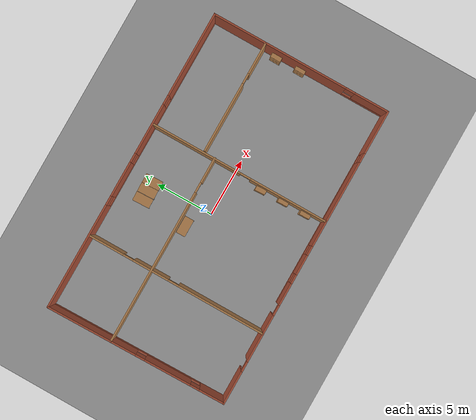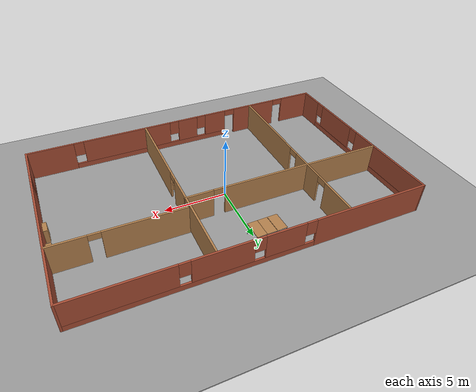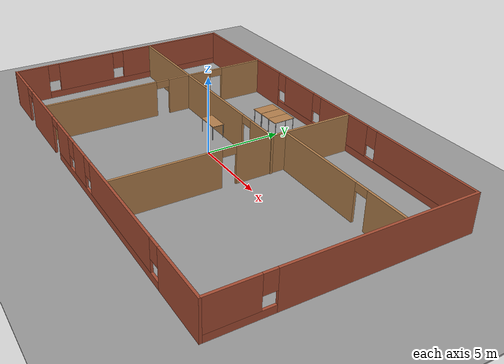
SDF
<sdf version="1.7">
 <world name="default">
  <light name="sun" type="directional">
   <pose>0 0 10 0 -0 0</pose>
   <diffuse>0.8 0.8 0.8 1</diffuse>
   <specular>0.2 0.2 0.2 1</specular>
   <attenuation>
    <range>1000</range>
    <constant>0.9</constant>
    <linear>0.01</linear>
    <quadratic>0.001</quadratic>
   </attenuation>
   <direction>-0.5 0.1 -0.9</direction>
   <spot><inner_angle>0</inner_angle><outer_angle>0</outer_angle><falloff>0</falloff></spot>
  </light>
  <model name="ground_plane">
   <static>1</static>
   <link name="link">
    <collision name="collision">
     <geometry><plane><normal>0 0 1</normal><size>100 100</size></plane></geometry>
     <surface><friction><ode><mu>100</mu><mu2>50</mu2></ode></friction></surface>
    </collision>
    <visual name="visual">
     <cast_shadows>0</cast_shadows>
     <geometry><plane><normal>0 0 1</normal><size>100 100</size></plane></geometry>
     <material>
      <script><uri>file://media/materials/scripts/gazebo.material</uri><name>Gazebo/Grey</name></script>
     </material>
    </visual>
   </link>
  </model>
  <gravity>0 0 -9.8</gravity>
  <magnetic_field>6e-06 2.3e-05 -4.2e-05</magnetic_field>
  <atmosphere type="adiabatic"/>
  <physics type="ode">
   <max_step_size>0.001</max_step_size>
   <real_time_factor>1</real_time_factor>
   <real_time_update_rate>1000</real_time_update_rate>
  </physics>
  <scene><ambient>0.4 0.4 0.4 1</ambient><background>0.7 0.7 0.7 1</background><shadows>1</shadows></scene>
  <audio><device>default</device></audio>
  <spherical_coordinates>
   <surface_model>EARTH_WGS84</surface_model>
   <latitude_deg>0</latitude_deg>
   <longitude_deg>0</longitude_deg>
   <elevation>0</elevation>
   <heading_deg>0</heading_deg>
  </spherical_coordinates>
  <model name="ROS_Project">
   <pose>0.619614 -0.310292 0 0 -0 0</pose>
   <link name="Wall_0">
    <pose>0.000596 7.8 0 0 -0 0</pose>
    <visual name="Wall_0_Visual_0">
     <pose>-8.63874 0 1.25 0 -0 0</pose>
     <geometry><box><size>9.22252 0.15 2.5</size></box></geometry>
     <material>
      <script><uri>file://media/materials/scripts/gazebo.material</uri><name>Gazebo/Bricks</name></script>
      <ambient>1 1 1 1</ambient>
     </material>
     <meta><layer>0</layer></meta>
    </visual>
    <collision name="Wall_0_Collision_0">
     <geometry><box><size>9.22252 0.15 2.5</size></box></geometry>
     <pose>-8.63874 0 1.25 0 -0 0</pose>
    </collision>
    <visual name="Wall_0_Visual_1">
     <pose>4.61126 0 0.25 0 -0 0</pose>
     <geometry><box><size>17.2775 0.15 0.5</size></box></geometry>
     <material>
      <script><uri>file://media/materials/scripts/gazebo.material</uri><name>Gazebo/Bricks</name></script>
      <ambient>1 1 1 1</ambient>
     </material>
     <meta><layer>0</layer></meta>
    </visual>
    <collision name="Wall_0_Collision_1">
     <geometry><box><size>17.2775 0.15 0.5</size></box></geometry>
     <pose>4.61126 0 0.25 0 -0 0</pose>
    </collision>
    <visual name="Wall_0_Visual_2">
     <pose>-1.70584 0 1.5 0 -0 0</pose>
     <geometry><box><size>3.04328 0.15 2</size></box></geometry>
     <material>
      <script><uri>file://media/materials/scripts/gazebo.material</uri><name>Gazebo/Bricks</name></script>
      <ambient>1 1 1 1</ambient>
     </material>
     <meta><layer>0</layer></meta>
    </visual>
    <collision name="Wall_0_Collision_2">
     <geometry><box><size>3.04328 0.15 2</size></box></geometry>
     <pose>-1.70584 0 1.5 0 -0 0</pose>
    </collision>
    <visual name="Wall_0_Visual_3">
     <pose>2.82518 0 1.5 0 -0 0</pose>
     <geometry><box><size>4.41877 0.15 2</size></box></geometry>
     <material>
      <script><uri>file://media/materials/scripts/gazebo.material</uri><name>Gazebo/Bricks</name></script>
      <ambient>1 1 1 1</ambient>
     </material>
     <meta><layer>0</layer></meta>
    </visual>
    <collision name="Wall_0_Collision_3">
     <geometry><box><size>4.41877 0.15 2</size></box></geometry>
     <pose>2.82518 0 1.5 0 -0 0</pose>
    </collision>
    <visual name="Wall_0_Visual_4">
     <pose>9.54228 0 1.5 0 -0 0</pose>
     <geometry><box><size>7.41543 0.15 2</size></box></geometry>
     <material>
      <script><uri>file://media/materials/scripts/gazebo.material</uri><name>Gazebo/Bricks</name></script>
      <ambient>1 1 1 1</ambient>
     </material>
     <meta><layer>0</layer></meta>
    </visual>
    <collision name="Wall_0_Collision_4">
     <geometry><box><size>7.41543 0.15 2</size></box></geometry>
     <pose>9.54228 0 1.5 0 -0 0</pose>
    </collision>
    <visual name="Wall_0_Visual_5">
     <pose>-3.62748 0 1.9 0 -0 0</pose>
     <geometry><box><size>0.8 0.15 1.2</size></box></geometry>
     <material>
      <script><uri>file://media/materials/scripts/gazebo.material</uri><name>Gazebo/Bricks</name></script>
      <ambient>1 1 1 1</ambient>
     </material>
     <meta><layer>0</layer></meta>
    </visual>
    <collision name="Wall_0_Collision_5">
     <geometry><box><size>0.8 0.15 1.2</size></box></geometry>
     <pose>-3.62748 0 1.9 0 -0 0</pose>
    </collision>
    <visual name="Wall_0_Visual_6">
     <pose>0.215796 0 1.9 0 -0 0</pose>
     <geometry><box><size>0.8 0.15 1.2</size></box></geometry>
     <material>
      <script><uri>file://media/materials/scripts/gazebo.material</uri><name>Gazebo/Bricks</name></script>
      <ambient>1 1 1 1</ambient>
     </material>
     <meta><layer>0</layer></meta>
    </visual>
    <collision name="Wall_0_Collision_6">
     <geometry><box><size>0.8 0.15 1.2</size></box></geometry>
     <pose>0.215796 0 1.9 0 -0 0</pose>
    </collision>
    <visual name="Wall_0_Visual_7">
     <pose>5.43457 0 1.9 0 -0 0</pose>
     <geometry><box><size>0.8 0.15 1.2</size></box></geometry>
     <material>
      <script><uri>file://media/materials/scripts/gazebo.material</uri><name>Gazebo/Bricks</name></script>
      <ambient>1 1 1 1</ambient>
     </material>
     <meta><layer>0</layer></meta>
    </visual>
    <collision name="Wall_0_Collision_7">
     <geometry><box><size>0.8 0.15 1.2</size></box></geometry>
     <pose>5.43457 0 1.9 0 -0 0</pose>
    </collision>
   </link>
   <link name="Wall_1">
    <pose>13.1756 0 0 0 -0 -1.5708</pose>
    <visual name="Wall_1_Visual_0">
     <pose>-1.92871 0 1.25 0 -0 0</pose>
     <geometry><box><size>11.8926 0.15 2.5</size></box></geometry>
     <material>
      <script><uri>file://media/materials/scripts/gazebo.material</uri><name>Gazebo/Bricks</name></script>
      <ambient>1 1 1 1</ambient>
     </material>
     <meta><layer>0</layer></meta>
    </visual>
    <collision name="Wall_1_Collision_0">
     <geometry><box><size>11.8926 0.15 2.5</size></box></geometry>
     <pose>-1.92871 0 1.25 0 -0 0</pose>
    </collision>
    <visual name="Wall_1_Visual_1">
     <pose>5.94629 0 0.25 0 -0 0</pose>
     <geometry><box><size>3.85742 0.15 0.5</size></box></geometry>
     <material>
      <script><uri>file://media/materials/scripts/gazebo.material</uri><name>Gazebo/Bricks</name></script>
      <ambient>1 1 1 1</ambient>
     </material>
     <meta><layer>0</layer></meta>
    </visual>
    <collision name="Wall_1_Collision_1">
     <geometry><box><size>3.85742 0.15 0.5</size></box></geometry>
     <pose>5.94629 0 0.25 0 -0 0</pose>
    </collision>
    <visual name="Wall_1_Visual_2">
     <pose>6.34629 0 1.5 0 -0 0</pose>
     <geometry><box><size>3.05742 0.15 2</size></box></geometry>
     <material>
      <script><uri>file://media/materials/scripts/gazebo.material</uri><name>Gazebo/Bricks</name></script>
      <ambient>1 1 1 1</ambient>
     </material>
     <meta><layer>0</layer></meta>
    </visual>
    <collision name="Wall_1_Collision_2">
     <geometry><box><size>3.05742 0.15 2</size></box></geometry>
     <pose>6.34629 0 1.5 0 -0 0</pose>
    </collision>
    <visual name="Wall_1_Visual_3">
     <pose>4.41758 0 1.9 0 -0 0</pose>
     <geometry><box><size>0.8 0.15 1.2</size></box></geometry>
     <material>
      <script><uri>file://media/materials/scripts/gazebo.material</uri><name>Gazebo/Bricks</name></script>
      <ambient>1 1 1 1</ambient>
     </material>
     <meta><layer>0</layer></meta>
    </visual>
    <collision name="Wall_1_Collision_3">
     <geometry><box><size>0.8 0.15 1.2</size></box></geometry>
     <pose>4.41758 0 1.9 0 -0 0</pose>
    </collision>
   </link>
   <link name="Wall_13">
    <pose>-4.83758 2.21713 0 0 -0 0</pose>
    <visual name="Wall_13_Visual_0">
     <pose>-1.58028 0 1.25 0 -0 0</pose>
     <geometry><box><size>13.3394 0.15 2.5</size></box></geometry>
     <material>
      <script><uri>file://media/materials/scripts/gazebo.material</uri><name>Gazebo/Wood</name></script>
      <ambient>1 1 1 1</ambient>
     </material>
     <meta><layer>0</layer></meta>
    </visual>
    <collision name="Wall_13_Collision_0">
     <geometry><box><size>13.3394 0.15 2.5</size></box></geometry>
     <pose>-1.58028 0 1.25 0 -0 0</pose>
    </collision>
    <visual name="Wall_13_Visual_1">
     <pose>7.11972 0 1.25 0 -0 0</pose>
     <geometry><box><size>2.26056 0.15 2.5</size></box></geometry>
     <material>
      <script><uri>file://media/materials/scripts/gazebo.material</uri><name>Gazebo/Wood</name></script>
      <ambient>1 1 1 1</ambient>
     </material>
     <meta><layer>0</layer></meta>
    </visual>
    <collision name="Wall_13_Collision_1">
     <geometry><box><size>2.26056 0.15 2.5</size></box></geometry>
     <pose>7.11972 0 1.25 0 -0 0</pose>
    </collision>
    <visual name="Wall_13_Visual_2">
     <pose>5.53944 0 2.25 0 -0 0</pose>
     <geometry><box><size>0.9 0.15 0.5</size></box></geometry>
     <material>
      <script><uri>file://media/materials/scripts/gazebo.material</uri><name>Gazebo/Wood</name></script>
      <ambient>1 1 1 1</ambient>
     </material>
     <meta><layer>0</layer></meta>
    </visual>
    <collision name="Wall_13_Collision_2">
     <geometry><box><size>0.9 0.15 0.5</size></box></geometry>
     <pose>5.53944 0 2.25 0 -0 0</pose>
    </collision>
   </link>
   <link name="Wall_16">
    <pose>8.29329 3.18806 0 0 -0 0</pose>
    <visual name="Wall_16_Visual_0">
     <pose>-1.82605 0 1.25 0 -0 0</pose>
     <geometry><box><size>6.09789 0.15 2.5</size></box></geometry>
     <material>
      <script><uri>file://media/materials/scripts/gazebo.material</uri><name>Gazebo/Wood</name></script>
      <ambient>1 1 1 1</ambient>
     </material>
     <meta><layer>0</layer></meta>
    </visual>
    <collision name="Wall_16_Collision_0">
     <geometry><box><size>6.09789 0.15 2.5</size></box></geometry>
     <pose>-1.82605 0 1.25 0 -0 0</pose>
    </collision>
    <visual name="Wall_16_Visual_1">
     <pose>3.49895 0 1.25 0 -0 0</pose>
     <geometry><box><size>2.75211 0.15 2.5</size></box></geometry>
     <material>
      <script><uri>file://media/materials/scripts/gazebo.material</uri><name>Gazebo/Wood</name></script>
      <ambient>1 1 1 1</ambient>
     </material>
     <meta><layer>0</layer></meta>
    </visual>
    <collision name="Wall_16_Collision_1">
     <geometry><box><size>2.75211 0.15 2.5</size></box></geometry>
     <pose>3.49895 0 1.25 0 -0 0</pose>
    </collision>
    <visual name="Wall_16_Visual_2">
     <pose>1.67289 0 2.25 0 -0 0</pose>
     <geometry><box><size>0.9 0.15 0.5</size></box></geometry>
     <material>
      <script><uri>file://media/materials/scripts/gazebo.material</uri><name>Gazebo/Wood</name></script>
      <ambient>1 1 1 1</ambient>
     </material>
     <meta><layer>0</layer></meta>
    </visual>
    <collision name="Wall_16_Collision_2">
     <geometry><box><size>0.9 0.15 0.5</size></box></geometry>
     <pose>1.67289 0 2.25 0 -0 0</pose>
    </collision>
   </link>
   <link name="Wall_2">
    <pose>0.125596 -7.8 0 0 -0 3.14159</pose>
    <visual name="Wall_2_Visual_0">
     <pose>-11.2176 0 1.25 0 -0 0</pose>
     <geometry><box><size>3.81489 0.15 2.5</size></box></geometry>
     <material>
      <script><uri>file://media/materials/scripts/gazebo.material</uri><name>Gazebo/Bricks</name></script>
      <ambient>1 1 1 1</ambient>
     </material>
     <meta><layer>0</layer></meta>
    </visual>
    <collision name="Wall_2_Collision_0">
     <geometry><box><size>3.81489 0.15 2.5</size></box></geometry>
     <pose>-11.2176 0 1.25 0 -0 0</pose>
    </collision>
    <visual name="Wall_2_Visual_1">
     <pose>7.27212 0 1.25 0 -0 0</pose>
     <geometry><box><size>4.11649 0.15 2.5</size></box></geometry>
     <material>
      <script><uri>file://media/materials/scripts/gazebo.material</uri><name>Gazebo/Bricks</name></script>
      <ambient>1 1 1 1</ambient>
     </material>
     <meta><layer>0</layer></meta>
    </visual>
    <collision name="Wall_2_Collision_1">
     <geometry><box><size>4.11649 0.15 2.5</size></box></geometry>
     <pose>7.27212 0 1.25 0 -0 0</pose>
    </collision>
    <visual name="Wall_2_Visual_2">
     <pose>11.6777 0 1.25 0 -0 0</pose>
     <geometry><box><size>2.89464 0.15 2.5</size></box></geometry>
     <material>
      <script><uri>file://media/materials/scripts/gazebo.material</uri><name>Gazebo/Bricks</name></script>
      <ambient>1 1 1 1</ambient>
     </material>
     <meta><layer>0</layer></meta>
    </visual>
    <collision name="Wall_2_Collision_2">
     <geometry><box><size>2.89464 0.15 2.5</size></box></geometry>
     <pose>11.6777 0 1.25 0 -0 0</pose>
    </collision>
    <visual name="Wall_2_Visual_3">
     <pose>-2.49812 0 0.25 0 -0 0</pose>
     <geometry><box><size>13.624 0.15 0.5</size></box></geometry>
     <material>
      <script><uri>file://media/materials/scripts/gazebo.material</uri><name>Gazebo/Bricks</name></script>
      <ambient>1 1 1 1</ambient>
     </material>
     <meta><layer>0</layer></meta>
    </visual>
    <collision name="Wall_2_Collision_3">
     <geometry><box><size>13.624 0.15 0.5</size></box></geometry>
     <pose>-2.49812 0 0.25 0 -0 0</pose>
    </collision>
    <visual name="Wall_2_Visual_4">
     <pose>-4.74319 0 1.5 0 -0 0</pose>
     <geometry><box><size>7.53385 0.15 2</size></box></geometry>
     <material>
      <script><uri>file://media/materials/scripts/gazebo.material</uri><name>Gazebo/Bricks</name></script>
      <ambient>1 1 1 1</ambient>
     </material>
     <meta><layer>0</layer></meta>
    </visual>
    <collision name="Wall_2_Collision_4">
     <geometry><box><size>7.53385 0.15 2</size></box></geometry>
     <pose>-4.74319 0 1.5 0 -0 0</pose>
    </collision>
    <visual name="Wall_2_Visual_5">
     <pose>0.698088 0 1.5 0 -0 0</pose>
     <geometry><box><size>1.7487 0.15 2</size></box></geometry>
     <material>
      <script><uri>file://media/materials/scripts/gazebo.material</uri><name>Gazebo/Bricks</name></script>
      <ambient>1 1 1 1</ambient>
     </material>
     <meta><layer>0</layer></meta>
    </visual>
    <collision name="Wall_2_Collision_5">
     <geometry><box><size>1.7487 0.15 2</size></box></geometry>
     <pose>0.698088 0 1.5 0 -0 0</pose>
    </collision>
    <visual name="Wall_2_Visual_6">
     <pose>3.34316 0 1.5 0 -0 0</pose>
     <geometry><box><size>1.94144 0.15 2</size></box></geometry>
     <material>
      <script><uri>file://media/materials/scripts/gazebo.material</uri><name>Gazebo/Bricks</name></script>
      <ambient>1 1 1 1</ambient>
     </material>
     <meta><layer>0</layer></meta>
    </visual>
    <collision name="Wall_2_Collision_6">
     <geometry><box><size>1.94144 0.15 2</size></box></geometry>
     <pose>3.34316 0 1.5 0 -0 0</pose>
    </collision>
    <visual name="Wall_2_Visual_7">
     <pose>-8.91011 0 1.9 0 -0 0</pose>
     <geometry><box><size>0.8 0.15 1.2</size></box></geometry>
     <material>
      <script><uri>file://media/materials/scripts/gazebo.material</uri><name>Gazebo/Bricks</name></script>
      <ambient>1 1 1 1</ambient>
     </material>
     <meta><layer>0</layer></meta>
    </visual>
    <collision name="Wall_2_Collision_7">
     <geometry><box><size>0.8 0.15 1.2</size></box></geometry>
     <pose>-8.91011 0 1.9 0 -0 0</pose>
    </collision>
    <visual name="Wall_2_Visual_8">
     <pose>-0.576263 0 1.9 0 -0 0</pose>
     <geometry><box><size>0.8 0.15 1.2</size></box></geometry>
     <material>
      <script><uri>file://media/materials/scripts/gazebo.material</uri><name>Gazebo/Bricks</name></script>
      <ambient>1 1 1 1</ambient>
     </material>
     <meta><layer>0</layer></meta>
    </visual>
    <collision name="Wall_2_Collision_8">
     <geometry><box><size>0.8 0.15 1.2</size></box></geometry>
     <pose>-0.576263 0 1.9 0 -0 0</pose>
    </collision>
    <visual name="Wall_2_Visual_9">
     <pose>1.97244 0 1.9 0 -0 0</pose>
     <geometry><box><size>0.8 0.15 1.2</size></box></geometry>
     <material>
      <script><uri>file://media/materials/scripts/gazebo.material</uri><name>Gazebo/Bricks</name></script>
      <ambient>1 1 1 1</ambient>
     </material>
     <meta><layer>0</layer></meta>
    </visual>
    <collision name="Wall_2_Collision_9">
     <geometry><box><size>0.8 0.15 1.2</size></box></geometry>
     <pose>1.97244 0 1.9 0 -0 0</pose>
    </collision>
    <visual name="Wall_2_Visual_10">
     <pose>9.78036 0 2.25 0 -0 0</pose>
     <geometry><box><size>0.9 0.15 0.5</size></box></geometry>
     <material>
      <script><uri>file://media/materials/scripts/gazebo.material</uri><name>Gazebo/Bricks</name></script>
      <ambient>1 1 1 1</ambient>
     </material>
     <meta><layer>0</layer></meta>
    </visual>
    <collision name="Wall_2_Collision_10">
     <geometry><box><size>0.9 0.15 0.5</size></box></geometry>
     <pose>9.78036 0 2.25 0 -0 0</pose>
    </collision>
    <visual name="Wall_2_Visual_11">
     <pose>4.76387 0 2.25 0 -0 0</pose>
     <geometry><box><size>0.9 0.15 0.5</size></box></geometry>
     <material>
      <script><uri>file://media/materials/scripts/gazebo.material</uri><name>Gazebo/Bricks</name></script>
      <ambient>1 1 1 1</ambient>
     </material>
     <meta><layer>0</layer></meta>
    </visual>
    <collision name="Wall_2_Collision_11">
     <geometry><box><size>0.9 0.15 0.5</size></box></geometry>
     <pose>4.76387 0 2.25 0 -0 0</pose>
    </collision>
   </link>
   <link name="Wall_3">
    <pose>-13.0494 0 0 0 -0 1.58682</pose>
    <visual name="Wall_3_Visual_0">
     <pose>-6.75098 0 1.25 0 -0 0</pose>
     <geometry><box><size>2.25004 0.15 2.5</size></box></geometry>
     <material>
      <script><uri>file://media/materials/scripts/gazebo.material</uri><name>Gazebo/Bricks</name></script>
      <ambient>1 1 1 1</ambient>
     </material>
     <meta><layer>0</layer></meta>
    </visual>
    <collision name="Wall_3_Collision_0">
     <geometry><box><size>2.25004 0.15 2.5</size></box></geometry>
     <pose>-6.75098 0 1.25 0 -0 0</pose>
    </collision>
    <visual name="Wall_3_Visual_1">
     <pose>1.12502 0 0.25 0 -0 0</pose>
     <geometry><box><size>13.502 0.15 0.5</size></box></geometry>
     <material>
      <script><uri>file://media/materials/scripts/gazebo.material</uri><name>Gazebo/Bricks</name></script>
      <ambient>1 1 1 1</ambient>
     </material>
     <meta><layer>0</layer></meta>
    </visual>
    <collision name="Wall_3_Collision_1">
     <geometry><box><size>13.502 0.15 0.5</size></box></geometry>
     <pose>1.12502 0 0.25 0 -0 0</pose>
    </collision>
    <visual name="Wall_3_Visual_2">
     <pose>-2.79797 0 1.5 0 -0 0</pose>
     <geometry><box><size>4.05599 0.15 2</size></box></geometry>
     <material>
      <script><uri>file://media/materials/scripts/gazebo.material</uri><name>Gazebo/Bricks</name></script>
      <ambient>1 1 1 1</ambient>
     </material>
     <meta><layer>0</layer></meta>
    </visual>
    <collision name="Wall_3_Collision_2">
     <geometry><box><size>4.05599 0.15 2</size></box></geometry>
     <pose>-2.79797 0 1.5 0 -0 0</pose>
    </collision>
    <visual name="Wall_3_Visual_3">
     <pose>3.95301 0 1.5 0 -0 0</pose>
     <geometry><box><size>7.84598 0.15 2</size></box></geometry>
     <material>
      <script><uri>file://media/materials/scripts/gazebo.material</uri><name>Gazebo/Bricks</name></script>
      <ambient>1 1 1 1</ambient>
     </material>
     <meta><layer>0</layer></meta>
    </visual>
    <collision name="Wall_3_Collision_3">
     <geometry><box><size>7.84598 0.15 2</size></box></geometry>
     <pose>3.95301 0 1.5 0 -0 0</pose>
    </collision>
    <visual name="Wall_3_Visual_4">
     <pose>-5.22597 0 1.9 0 -0 0</pose>
     <geometry><box><size>0.8 0.15 1.2</size></box></geometry>
     <material>
      <script><uri>file://media/materials/scripts/gazebo.material</uri><name>Gazebo/Bricks</name></script>
      <ambient>1 1 1 1</ambient>
     </material>
     <meta><layer>0</layer></meta>
    </visual>
    <collision name="Wall_3_Collision_4">
     <geometry><box><size>0.8 0.15 1.2</size></box></geometry>
     <pose>-5.22597 0 1.9 0 -0 0</pose>
    </collision>
    <visual name="Wall_3_Visual_5">
     <pose>-0.369976 0 1.9 0 -0 0</pose>
     <geometry><box><size>0.8 0.15 1.2</size></box></geometry>
     <material>
      <script><uri>file://media/materials/scripts/gazebo.material</uri><name>Gazebo/Bricks</name></script>
      <ambient>1 1 1 1</ambient>
     </material>
     <meta><layer>0</layer></meta>
    </visual>
    <collision name="Wall_3_Collision_5">
     <geometry><box><size>0.8 0.15 1.2</size></box></geometry>
     <pose>-0.369976 0 1.9 0 -0 0</pose>
    </collision>
   </link>
   <link name="Wall_5">
    <pose>-6.74197 -0.036822 0 0 -0 -1.5708</pose>
    <visual name="Wall_5_Visual_0">
     <pose>-6.25859 0 1.25 0 -0 0</pose>
     <geometry><box><size>2.98281 0.15 2.5</size></box></geometry>
     <material>
      <script><uri>file://media/materials/scripts/gazebo.material</uri><name>Gazebo/Wood</name></script>
      <ambient>1 1 1 1</ambient>
     </material>
     <meta><layer>0</layer></meta>
    </visual>
    <collision name="Wall_5_Collision_0">
     <geometry><box><size>2.98281 0.15 2.5</size></box></geometry>
     <pose>-6.25859 0 1.25 0 -0 0</pose>
    </collision>
    <visual name="Wall_5_Visual_1">
     <pose>-2.29441 0 1.25 0 -0 0</pose>
     <geometry><box><size>3.14556 0.15 2.5</size></box></geometry>
     <material>
      <script><uri>file://media/materials/scripts/gazebo.material</uri><name>Gazebo/Wood</name></script>
      <ambient>1 1 1 1</ambient>
     </material>
     <meta><layer>0</layer></meta>
    </visual>
    <collision name="Wall_5_Collision_1">
     <geometry><box><size>3.14556 0.15 2.5</size></box></geometry>
     <pose>-2.29441 0 1.25 0 -0 0</pose>
    </collision>
    <visual name="Wall_5_Visual_2">
     <pose>3.96419 0 1.25 0 -0 0</pose>
     <geometry><box><size>7.57163 0.15 2.5</size></box></geometry>
     <material>
      <script><uri>file://media/materials/scripts/gazebo.material</uri><name>Gazebo/Wood</name></script>
      <ambient>1 1 1 1</ambient>
     </material>
     <meta><layer>0</layer></meta>
    </visual>
    <collision name="Wall_5_Collision_2">
     <geometry><box><size>7.57163 0.15 2.5</size></box></geometry>
     <pose>3.96419 0 1.25 0 -0 0</pose>
    </collision>
    <visual name="Wall_5_Visual_3">
     <pose>-4.31719 0 2.25 0 -0 0</pose>
     <geometry><box><size>0.9 0.15 0.5</size></box></geometry>
     <material>
      <script><uri>file://media/materials/scripts/gazebo.material</uri><name>Gazebo/Wood</name></script>
      <ambient>1 1 1 1</ambient>
     </material>
     <meta><layer>0</layer></meta>
    </visual>
    <collision name="Wall_5_Collision_3">
     <geometry><box><size>0.9 0.15 0.5</size></box></geometry>
     <pose>-4.31719 0 2.25 0 -0 0</pose>
    </collision>
    <visual name="Wall_5_Visual_4">
     <pose>-0.271629 0 2.25 0 -0 0</pose>
     <geometry><box><size>0.9 0.15 0.5</size></box></geometry>
     <material>
      <script><uri>file://media/materials/scripts/gazebo.material</uri><name>Gazebo/Wood</name></script>
      <ambient>1 1 1 1</ambient>
     </material>
     <meta><layer>0</layer></meta>
    </visual>
    <collision name="Wall_5_Collision_4">
     <geometry><box><size>0.9 0.15 0.5</size></box></geometry>
     <pose>-0.271629 0 2.25 0 -0 0</pose>
    </collision>
   </link>
   <link name="Wall_9">
    <pose>3.29102 -0.036822 0 0 -0 -1.5708</pose>
    <visual name="Wall_9_Visual_0">
     <pose>-3.83126 0 1.25 0 -0 0</pose>
     <geometry><box><size>7.83748 0.15 2.5</size></box></geometry>
     <material>
      <script><uri>file://media/materials/scripts/gazebo.material</uri><name>Gazebo/Wood</name></script>
      <ambient>1 1 1 1</ambient>
     </material>
     <meta><layer>0</layer></meta>
    </visual>
    <collision name="Wall_9_Collision_0">
     <geometry><box><size>7.83748 0.15 2.5</size></box></geometry>
     <pose>-3.83126 0 1.25 0 -0 0</pose>
    </collision>
    <visual name="Wall_9_Visual_1">
     <pose>4.36874 0 1.25 0 -0 0</pose>
     <geometry><box><size>6.76252 0.15 2.5</size></box></geometry>
     <material>
      <script><uri>file://media/materials/scripts/gazebo.material</uri><name>Gazebo/Wood</name></script>
      <ambient>1 1 1 1</ambient>
     </material>
     <meta><layer>0</layer></meta>
    </visual>
    <collision name="Wall_9_Collision_1">
     <geometry><box><size>6.76252 0.15 2.5</size></box></geometry>
     <pose>4.36874 0 1.25 0 -0 0</pose>
    </collision>
    <visual name="Wall_9_Visual_2">
     <pose>0.537482 0 2.25 0 -0 0</pose>
     <geometry><box><size>0.9 0.15 0.5</size></box></geometry>
     <material>
      <script><uri>file://media/materials/scripts/gazebo.material</uri><name>Gazebo/Wood</name></script>
      <ambient>1 1 1 1</ambient>
     </material>
     <meta><layer>0</layer></meta>
    </visual>
    <collision name="Wall_9_Collision_2">
     <geometry><box><size>0.9 0.15 0.5</size></box></geometry>
     <pose>0.537482 0 2.25 0 -0 0</pose>
    </collision>
   </link>
   <static>1</static>
  </model>
  <model name="ground_plane_0">
   <static>1</static>
   <link name="link">
    <collision name="collision">
     <geometry><plane><normal>0 0 1</normal><size>100 100</size></plane></geometry>
     <surface><friction><ode><mu>100</mu><mu2>50</mu2></ode></friction></surface>
    </collision>
    <visual name="visual">
     <cast_shadows>0</cast_shadows>
     <geometry><plane><normal>0 0 1</normal><size>100 100</size></plane></geometry>
     <material>
      <script><uri>file://media/materials/scripts/gazebo.material</uri><name>Gazebo/Grey</name></script>
     </material>
    </visual>
   </link>
   <pose>-0.447926 9.40666 0 0 -0 0</pose>
  </model>
  <model name="bookshelf">
   <static>1</static>
   <link name="link">
    <inertial><mass>1</mass></inertial>
    <collision name="back">
     <pose>0 0.005 0.6 0 -0 0</pose>
     <geometry><box><size>0.9 0.01 1.2</size></box></geometry>
    </collision>
    <visual name="visual1">
     <pose>0 0.005 0.6 0 -0 0</pose>
     <geometry><box><size>0.9 0.01 1.2</size></box></geometry>
     <material>
      <script><uri>file://media/materials/scripts/gazebo.material</uri><name>Gazebo/Wood</name></script>
     </material>
    </visual>
    <collision name="left_side">
     <pose>0.45 -0.195 0.6 0 -0 0</pose>
     <geometry><box><size>0.02 0.4 1.2</size></box></geometry>
    </collision>
    <visual name="visual2">
     <pose>0.45 -0.195 0.6 0 -0 0</pose>
     <geometry><box><size>0.02 0.4 1.2</size></box></geometry>
     <material>
      <script><uri>file://media/materials/scripts/gazebo.material</uri><name>Gazebo/Wood</name></script>
     </material>
    </visual>
    <collision name="right_side">
     <pose>-0.45 -0.195 0.6 0 -0 0</pose>
     <geometry><box><size>0.02 0.4 1.2</size></box></geometry>
    </collision>
    <visual name="visual3">
     <pose>-0.45 -0.195 0.6 0 -0 0</pose>
     <geometry><box><size>0.02 0.4 1.2</size></box></geometry>
     <material>
      <script><uri>file://media/materials/scripts/gazebo.material</uri><name>Gazebo/Wood</name></script>
     </material>
    </visual>
    <collision name="bottom">
     <pose>0 -0.195 0.03 0 -0 0</pose>
     <geometry><box><size>0.88 0.4 0.06</size></box></geometry>
    </collision>
    <visual name="visual4">
     <pose>0 -0.195 0.03 0 -0 0</pose>
     <geometry><box><size>0.88 0.4 0.06</size></box></geometry>
     <material>
      <script><uri>file://media/materials/scripts/gazebo.material</uri><name>Gazebo/Wood</name></script>
     </material>
    </visual>
    <collision name="top">
     <pose>0 -0.195 1.19 0 -0 0</pose>
     <geometry><box><size>0.88 0.4 0.02</size></box></geometry>
    </collision>
    <visual name="visual5">
     <pose>0 -0.195 1.19 0 -0 0</pose>
     <geometry><box><size>0.88 0.4 0.02</size></box></geometry>
     <material>
      <script><uri>file://media/materials/scripts/gazebo.material</uri><name>Gazebo/Wood</name></script>
     </material>
    </visual>
    <collision name="low_shelf">
     <pose>0 -0.195 0.43 0 -0 0</pose>
     <geometry><box><size>0.88 0.4 0.02</size></box></geometry>
    </collision>
    <visual name="visual6">
     <pose>0 -0.195 0.43 0 -0 0</pose>
     <geometry><box><size>0.88 0.4 0.02</size></box></geometry>
     <material>
      <script><uri>file://media/materials/scripts/gazebo.material</uri><name>Gazebo/Wood</name></script>
     </material>
    </visual>
    <collision name="high_shelf">
     <pose>0 -0.195 0.8 0 -0 0</pose>
     <geometry><box><size>0.88 0.4 0.02</size></box></geometry>
    </collision>
    <visual name="visual7">
     <pose>0 -0.195 0.8 0 -0 0</pose>
     <geometry><box><size>0.88 0.4 0.02</size></box></geometry>
     <material>
      <script><uri>file://media/materials/scripts/gazebo.material</uri><name>Gazebo/Wood</name></script>
     </material>
    </visual>
   </link>
   <pose>3.83157 -2.48532 -0 0 0 -1.53649</pose>
  </model>
  <model name="bookshelf_clone">
   <static>1</static>
   <link name="link">
    <inertial><mass>1</mass></inertial>
    <collision name="back">
     <pose>0 0.005 0.6 0 -0 0</pose>
     <geometry><box><size>0.9 0.01 1.2</size></box></geometry>
    </collision>
    <visual name="visual1">
     <pose>0 0.005 0.6 0 -0 0</pose>
     <geometry><box><size>0.9 0.01 1.2</size></box></geometry>
     <material>
      <script><uri>file://media/materials/scripts/gazebo.material</uri><name>Gazebo/Wood</name></script>
     </material>
    </visual>
    <collision name="left_side">
     <pose>0.45 -0.195 0.6 0 -0 0</pose>
     <geometry><box><size>0.02 0.4 1.2</size></box></geometry>
    </collision>
    <visual name="visual2">
     <pose>0.45 -0.195 0.6 0 -0 0</pose>
     <geometry><box><size>0.02 0.4 1.2</size></box></geometry>
     <material>
      <script><uri>file://media/materials/scripts/gazebo.material</uri><name>Gazebo/Wood</name></script>
     </material>
    </visual>
    <collision name="right_side">
     <pose>-0.45 -0.195 0.6 0 -0 0</pose>
     <geometry><box><size>0.02 0.4 1.2</size></box></geometry>
    </collision>
    <visual name="visual3">
     <pose>-0.45 -0.195 0.6 0 -0 0</pose>
     <geometry><box><size>0.02 0.4 1.2</size></box></geometry>
     <material>
      <script><uri>file://media/materials/scripts/gazebo.material</uri><name>Gazebo/Wood</name></script>
     </material>
    </visual>
    <collision name="bottom">
     <pose>0 -0.195 0.03 0 -0 0</pose>
     <geometry><box><size>0.88 0.4 0.06</size></box></geometry>
    </collision>
    <visual name="visual4">
     <pose>0 -0.195 0.03 0 -0 0</pose>
     <geometry><box><size>0.88 0.4 0.06</size></box></geometry>
     <material>
      <script><uri>file://media/materials/scripts/gazebo.material</uri><name>Gazebo/Wood</name></script>
     </material>
    </visual>
    <collision name="top">
     <pose>0 -0.195 1.19 0 -0 0</pose>
     <geometry><box><size>0.88 0.4 0.02</size></box></geometry>
    </collision>
    <visual name="visual5">
     <pose>0 -0.195 1.19 0 -0 0</pose>
     <geometry><box><size>0.88 0.4 0.02</size></box></geometry>
     <material>
      <script><uri>file://media/materials/scripts/gazebo.material</uri><name>Gazebo/Wood</name></script>
     </material>
    </visual>
    <collision name="low_shelf">
     <pose>0 -0.195 0.43 0 -0 0</pose>
     <geometry><box><size>0.88 0.4 0.02</size></box></geometry>
    </collision>
    <visual name="visual6">
     <pose>0 -0.195 0.43 0 -0 0</pose>
     <geometry><box><size>0.88 0.4 0.02</size></box></geometry>
     <material>
      <script><uri>file://media/materials/scripts/gazebo.material</uri><name>Gazebo/Wood</name></script>
     </material>
    </visual>
    <collision name="high_shelf">
     <pose>0 -0.195 0.8 0 -0 0</pose>
     <geometry><box><size>0.88 0.4 0.02</size></box></geometry>
    </collision>
    <visual name="visual7">
     <pose>0 -0.195 0.8 0 -0 0</pose>
     <geometry><box><size>0.88 0.4 0.02</size></box></geometry>
     <material>
      <script><uri>file://media/materials/scripts/gazebo.material</uri><name>Gazebo/Wood</name></script>
     </material>
    </visual>
   </link>
   <pose>3.89441 -4.51591 0 0 0 -1.53649</pose>
  </model>
  <model name="bookshelf_clone_0">
   <static>1</static>
   <link name="link">
    <inertial><mass>1</mass></inertial>
    <collision name="back">
     <pose>0 0.005 0.6 0 -0 0</pose>
     <geometry><box><size>0.9 0.01 1.2</size></box></geometry>
    </collision>
    <visual name="visual1">
     <pose>0 0.005 0.6 0 -0 0</pose>
     <geometry><box><size>0.9 0.01 1.2</size></box></geometry>
     <material>
      <script><uri>file://media/materials/scripts/gazebo.material</uri><name>Gazebo/Wood</name></script>
     </material>
    </visual>
    <collision name="left_side">
     <pose>0.45 -0.195 0.6 0 -0 0</pose>
     <geometry><box><size>0.02 0.4 1.2</size></box></geometry>
    </collision>
    <visual name="visual2">
     <pose>0.45 -0.195 0.6 0 -0 0</pose>
     <geometry><box><size>0.02 0.4 1.2</size></box></geometry>
     <material>
      <script><uri>file://media/materials/scripts/gazebo.material</uri><name>Gazebo/Wood</name></script>
     </material>
    </visual>
    <collision name="right_side">
     <pose>-0.45 -0.195 0.6 0 -0 0</pose>
     <geometry><box><size>0.02 0.4 1.2</size></box></geometry>
    </collision>
    <visual name="visual3">
     <pose>-0.45 -0.195 0.6 0 -0 0</pose>
     <geometry><box><size>0.02 0.4 1.2</size></box></geometry>
     <material>
      <script><uri>file://media/materials/scripts/gazebo.material</uri><name>Gazebo/Wood</name></script>
     </material>
    </visual>
    <collision name="bottom">
     <pose>0 -0.195 0.03 0 -0 0</pose>
     <geometry><box><size>0.88 0.4 0.06</size></box></geometry>
    </collision>
    <visual name="visual4">
     <pose>0 -0.195 0.03 0 -0 0</pose>
     <geometry><box><size>0.88 0.4 0.06</size></box></geometry>
     <material>
      <script><uri>file://media/materials/scripts/gazebo.material</uri><name>Gazebo/Wood</name></script>
     </material>
    </visual>
    <collision name="top">
     <pose>0 -0.195 1.19 0 -0 0</pose>
     <geometry><box><size>0.88 0.4 0.02</size></box></geometry>
    </collision>
    <visual name="visual5">
     <pose>0 -0.195 1.19 0 -0 0</pose>
     <geometry><box><size>0.88 0.4 0.02</size></box></geometry>
     <material>
      <script><uri>file://media/materials/scripts/gazebo.material</uri><name>Gazebo/Wood</name></script>
     </material>
    </visual>
    <collision name="low_shelf">
     <pose>0 -0.195 0.43 0 -0 0</pose>
     <geometry><box><size>0.88 0.4 0.02</size></box></geometry>
    </collision>
    <visual name="visual6">
     <pose>0 -0.195 0.43 0 -0 0</pose>
     <geometry><box><size>0.88 0.4 0.02</size></box></geometry>
     <material>
      <script><uri>file://media/materials/scripts/gazebo.material</uri><name>Gazebo/Wood</name></script>
     </material>
    </visual>
    <collision name="high_shelf">
     <pose>0 -0.195 0.8 0 -0 0</pose>
     <geometry><box><size>0.88 0.4 0.02</size></box></geometry>
    </collision>
    <visual name="visual7">
     <pose>0 -0.195 0.8 0 -0 0</pose>
     <geometry><box><size>0.88 0.4 0.02</size></box></geometry>
     <material>
      <script><uri>file://media/materials/scripts/gazebo.material</uri><name>Gazebo/Wood</name></script>
     </material>
    </visual>
   </link>
   <pose>3.8885 -6.52858 0 0 0 -1.53649</pose>
  </model>
  <model name="table">
   <static>1</static>
   <link name="link">
    <collision name="surface">
     <pose>0 0 1 0 -0 0</pose>
     <geometry><box><size>1.5 0.8 0.03</size></box></geometry>
     <surface><friction><ode><mu>0.6</mu><mu2>0.6</mu2></ode></friction></surface>
    </collision>
    <visual name="visual1">
     <pose>0 0 1 0 -0 0</pose>
     <geometry><box><size>1.5 0.8 0.03</size></box></geometry>
     <material>
      <script><uri>file://media/materials/scripts/gazebo.material</uri><name>Gazebo/Wood</name></script>
     </material>
    </visual>
    <collision name="front_left_leg">
     <pose>0.68 0.38 0.5 0 -0 0</pose>
     <geometry><cylinder><radius>0.02</radius><length>1</length></cylinder></geometry>
    </collision>
    <visual name="front_left_leg">
     <pose>0.68 0.38 0.5 0 -0 0</pose>
     <geometry><cylinder><radius>0.02</radius><length>1</length></cylinder></geometry>
     <material>
      <script><uri>file://media/materials/scripts/gazebo.material</uri><name>Gazebo/Grey</name></script>
     </material>
    </visual>
    <collision name="front_right_leg">
     <pose>0.68 -0.38 0.5 0 -0 0</pose>
     <geometry><cylinder><radius>0.02</radius><length>1</length></cylinder></geometry>
    </collision>
    <visual name="front_right_leg">
     <pose>0.68 -0.38 0.5 0 -0 0</pose>
     <geometry><cylinder><radius>0.02</radius><length>1</length></cylinder></geometry>
     <material>
      <script><uri>file://media/materials/scripts/gazebo.material</uri><name>Gazebo/Grey</name></script>
     </material>
    </visual>
    <collision name="back_right_leg">
     <pose>-0.68 -0.38 0.5 0 -0 0</pose>
     <geometry><cylinder><radius>0.02</radius><length>1</length></cylinder></geometry>
    </collision>
    <visual name="back_right_leg">
     <pose>-0.68 -0.38 0.5 0 -0 0</pose>
     <geometry><cylinder><radius>0.02</radius><length>1</length></cylinder></geometry>
     <material>
      <script><uri>file://media/materials/scripts/gazebo.material</uri><name>Gazebo/Grey</name></script>
     </material>
    </visual>
    <collision name="back_left_leg">
     <pose>-0.68 0.38 0.5 0 -0 0</pose>
     <geometry><cylinder><radius>0.02</radius><length>1</length></cylinder></geometry>
    </collision>
    <visual name="back_left_leg">
     <pose>-0.68 0.38 0.5 0 -0 0</pose>
     <geometry><cylinder><radius>0.02</radius><length>1</length></cylinder></geometry>
     <material>
      <script><uri>file://media/materials/scripts/gazebo.material</uri><name>Gazebo/Grey</name></script>
     </material>
    </visual>
   </link>
   <pose>-1.6744 5.33872 0 0 -0 1.59967</pose>
  </model>
  <model name="table_clone">
   <static>1</static>
   <link name="link">
    <collision name="surface">
     <pose>0 0 1 0 -0 0</pose>
     <geometry><box><size>1.5 0.8 0.03</size></box></geometry>
     <surface><friction><ode><mu>0.6</mu><mu2>0.6</mu2></ode></friction></surface>
    </collision>
    <visual name="visual1">
     <pose>0 0 1 0 -0 0</pose>
     <geometry><box><size>1.5 0.8 0.03</size></box></geometry>
     <material>
      <script><uri>file://media/materials/scripts/gazebo.material</uri><name>Gazebo/Wood</name></script>
     </material>
    </visual>
    <collision name="front_left_leg">
     <pose>0.68 0.38 0.5 0 -0 0</pose>
     <geometry><cylinder><radius>0.02</radius><length>1</length></cylinder></geometry>
    </collision>
    <visual name="front_left_leg">
     <pose>0.68 0.38 0.5 0 -0 0</pose>
     <geometry><cylinder><radius>0.02</radius><length>1</length></cylinder></geometry>
     <material>
      <script><uri>file://media/materials/scripts/gazebo.material</uri><name>Gazebo/Grey</name></script>
     </material>
    </visual>
    <collision name="front_right_leg">
     <pose>0.68 -0.38 0.5 0 -0 0</pose>
     <geometry><cylinder><radius>0.02</radius><length>1</length></cylinder></geometry>
    </collision>
    <visual name="front_right_leg">
     <pose>0.68 -0.38 0.5 0 -0 0</pose>
     <geometry><cylinder><radius>0.02</radius><length>1</length></cylinder></geometry>
     <material>
      <script><uri>file://media/materials/scripts/gazebo.material</uri><name>Gazebo/Grey</name></script>
     </material>
    </visual>
    <collision name="back_right_leg">
     <pose>-0.68 -0.38 0.5 0 -0 0</pose>
     <geometry><cylinder><radius>0.02</radius><length>1</length></cylinder></geometry>
    </collision>
    <visual name="back_right_leg">
     <pose>-0.68 -0.38 0.5 0 -0 0</pose>
     <geometry><cylinder><radius>0.02</radius><length>1</length></cylinder></geometry>
     <material>
      <script><uri>file://media/materials/scripts/gazebo.material</uri><name>Gazebo/Grey</name></script>
     </material>
    </visual>
    <collision name="back_left_leg">
     <pose>-0.68 0.38 0.5 0 -0 0</pose>
     <geometry><cylinder><radius>0.02</radius><length>1</length></cylinder></geometry>
    </collision>
    <visual name="back_left_leg">
     <pose>-0.68 0.38 0.5 0 -0 0</pose>
     <geometry><cylinder><radius>0.02</radius><length>1</length></cylinder></geometry>
     <material>
      <script><uri>file://media/materials/scripts/gazebo.material</uri><name>Gazebo/Grey</name></script>
     </material>
    </visual>
   </link>
   <pose>-0.853859 5.3572 0 0 -0 1.59967</pose>
  </model>
  <model name="table_clone_0">
   <static>1</static>
   <link name="link">
    <collision name="surface">
     <pose>0 0 1 0 -0 0</pose>
     <geometry><box><size>1.5 0.8 0.03</size></box></geometry>
     <surface><friction><ode><mu>0.6</mu><mu2>0.6</mu2></ode></friction></surface>
    </collision>
    <visual name="visual1">
     <pose>0 0 1 0 -0 0</pose>
     <geometry><box><size>1.5 0.8 0.03</size></box></geometry>
     <material>
      <script><uri>file://media/materials/scripts/gazebo.material</uri><name>Gazebo/Wood</name></script>
     </material>
    </visual>
    <collision name="front_left_leg">
     <pose>0.68 0.38 0.5 0 -0 0</pose>
     <geometry><cylinder><radius>0.02</radius><length>1</length></cylinder></geometry>
    </collision>
    <visual name="front_left_leg">
     <pose>0.68 0.38 0.5 0 -0 0</pose>
     <geometry><cylinder><radius>0.02</radius><length>1</length></cylinder></geometry>
     <material>
      <script><uri>file://media/materials/scripts/gazebo.material</uri><name>Gazebo/Grey</name></script>
     </material>
    </visual>
    <collision name="front_right_leg">
     <pose>0.68 -0.38 0.5 0 -0 0</pose>
     <geometry><cylinder><radius>0.02</radius><length>1</length></cylinder></geometry>
    </collision>
    <visual name="front_right_leg">
     <pose>0.68 -0.38 0.5 0 -0 0</pose>
     <geometry><cylinder><radius>0.02</radius><length>1</length></cylinder></geometry>
     <material>
      <script><uri>file://media/materials/scripts/gazebo.material</uri><name>Gazebo/Grey</name></script>
     </material>
    </visual>
    <collision name="back_right_leg">
     <pose>-0.68 -0.38 0.5 0 -0 0</pose>
     <geometry><cylinder><radius>0.02</radius><length>1</length></cylinder></geometry>
    </collision>
    <visual name="back_right_leg">
     <pose>-0.68 -0.38 0.5 0 -0 0</pose>
     <geometry><cylinder><radius>0.02</radius><length>1</length></cylinder></geometry>
     <material>
      <script><uri>file://media/materials/scripts/gazebo.material</uri><name>Gazebo/Grey</name></script>
     </material>
    </visual>
    <collision name="back_left_leg">
     <pose>-0.68 0.38 0.5 0 -0 0</pose>
     <geometry><cylinder><radius>0.02</radius><length>1</length></cylinder></geometry>
    </collision>
    <visual name="back_left_leg">
     <pose>-0.68 0.38 0.5 0 -0 0</pose>
     <geometry><cylinder><radius>0.02</radius><length>1</length></cylinder></geometry>
     <material>
      <script><uri>file://media/materials/scripts/gazebo.material</uri><name>Gazebo/Grey</name></script>
     </material>
    </visual>
   </link>
   <pose>-0.065901 5.37037 0 0 -0 1.59967</pose>
  </model>
  <model name="bookshelf_0">
   <static>1</static>
   <link name="link">
    <inertial><mass>1</mass></inertial>
    <collision name="back">
     <pose>0 0.005 0.6 0 -0 0</pose>
     <geometry><box><size>0.9 0.01 1.2</size></box></geometry>
    </collision>
    <visual name="visual1">
     <pose>0 0.005 0.6 0 -0 0</pose>
     <geometry><box><size>0.9 0.01 1.2</size></box></geometry>
     <material>
      <script><uri>file://media/materials/scripts/gazebo.material</uri><name>Gazebo/Wood</name></script>
     </material>
    </visual>
    <collision name="left_side">
     <pose>0.45 -0.195 0.6 0 -0 0</pose>
     <geometry><box><size>0.02 0.4 1.2</size></box></geometry>
    </collision>
    <visual name="visual2">
     <pose>0.45 -0.195 0.6 0 -0 0</pose>
     <geometry><box><size>0.02 0.4 1.2</size></box></geometry>
     <material>
      <script><uri>file://media/materials/scripts/gazebo.material</uri><name>Gazebo/Wood</name></script>
     </material>
    </visual>
    <collision name="right_side">
     <pose>-0.45 -0.195 0.6 0 -0 0</pose>
     <geometry><box><size>0.02 0.4 1.2</size></box></geometry>
    </collision>
    <visual name="visual3">
     <pose>-0.45 -0.195 0.6 0 -0 0</pose>
     <geometry><box><size>0.02 0.4 1.2</size></box></geometry>
     <material>
      <script><uri>file://media/materials/scripts/gazebo.material</uri><name>Gazebo/Wood</name></script>
     </material>
    </visual>
    <collision name="bottom">
     <pose>0 -0.195 0.03 0 -0 0</pose>
     <geometry><box><size>0.88 0.4 0.06</size></box></geometry>
    </collision>
    <visual name="visual4">
     <pose>0 -0.195 0.03 0 -0 0</pose>
     <geometry><box><size>0.88 0.4 0.06</size></box></geometry>
     <material>
      <script><uri>file://media/materials/scripts/gazebo.material</uri><name>Gazebo/Wood</name></script>
     </material>
    </visual>
    <collision name="top">
     <pose>0 -0.195 1.19 0 -0 0</pose>
     <geometry><box><size>0.88 0.4 0.02</size></box></geometry>
    </collision>
    <visual name="visual5">
     <pose>0 -0.195 1.19 0 -0 0</pose>
     <geometry><box><size>0.88 0.4 0.02</size></box></geometry>
     <material>
      <script><uri>file://media/materials/scripts/gazebo.material</uri><name>Gazebo/Wood</name></script>
     </material>
    </visual>
    <collision name="low_shelf">
     <pose>0 -0.195 0.43 0 -0 0</pose>
     <geometry><box><size>0.88 0.4 0.02</size></box></geometry>
    </collision>
    <visual name="visual6">
     <pose>0 -0.195 0.43 0 -0 0</pose>
     <geometry><box><size>0.88 0.4 0.02</size></box></geometry>
     <material>
      <script><uri>file://media/materials/scripts/gazebo.material</uri><name>Gazebo/Wood</name></script>
     </material>
    </visual>
    <collision name="high_shelf">
     <pose>0 -0.195 0.8 0 -0 0</pose>
     <geometry><box><size>0.88 0.4 0.02</size></box></geometry>
    </collision>
    <visual name="visual7">
     <pose>0 -0.195 0.8 0 -0 0</pose>
     <geometry><box><size>0.88 0.4 0.02</size></box></geometry>
     <material>
      <script><uri>file://media/materials/scripts/gazebo.material</uri><name>Gazebo/Wood</name></script>
     </material>
    </visual>
   </link>
   <pose>13.7188 1.66398 0 0 0 -1.58365</pose>
  </model>
  <model name="bookshelf_0_clone">
   <static>1</static>
   <link name="link">
    <inertial><mass>1</mass></inertial>
    <collision name="back">
     <pose>0 0.005 0.6 0 -0 0</pose>
     <geometry><box><size>0.9 0.01 1.2</size></box></geometry>
    </collision>
    <visual name="visual1">
     <pose>0 0.005 0.6 0 -0 0</pose>
     <geometry><box><size>0.9 0.01 1.2</size></box></geometry>
     <material>
      <script><uri>file://media/materials/scripts/gazebo.material</uri><name>Gazebo/Wood</name></script>
     </material>
    </visual>
    <collision name="left_side">
     <pose>0.45 -0.195 0.6 0 -0 0</pose>
     <geometry><box><size>0.02 0.4 1.2</size></box></geometry>
    </collision>
    <visual name="visual2">
     <pose>0.45 -0.195 0.6 0 -0 0</pose>
     <geometry><box><size>0.02 0.4 1.2</size></box></geometry>
     <material>
      <script><uri>file://media/materials/scripts/gazebo.material</uri><name>Gazebo/Wood</name></script>
     </material>
    </visual>
    <collision name="right_side">
     <pose>-0.45 -0.195 0.6 0 -0 0</pose>
     <geometry><box><size>0.02 0.4 1.2</size></box></geometry>
    </collision>
    <visual name="visual3">
     <pose>-0.45 -0.195 0.6 0 -0 0</pose>
     <geometry><box><size>0.02 0.4 1.2</size></box></geometry>
     <material>
      <script><uri>file://media/materials/scripts/gazebo.material</uri><name>Gazebo/Wood</name></script>
     </material>
    </visual>
    <collision name="bottom">
     <pose>0 -0.195 0.03 0 -0 0</pose>
     <geometry><box><size>0.88 0.4 0.06</size></box></geometry>
    </collision>
    <visual name="visual4">
     <pose>0 -0.195 0.03 0 -0 0</pose>
     <geometry><box><size>0.88 0.4 0.06</size></box></geometry>
     <material>
      <script><uri>file://media/materials/scripts/gazebo.material</uri><name>Gazebo/Wood</name></script>
     </material>
    </visual>
    <collision name="top">
     <pose>0 -0.195 1.19 0 -0 0</pose>
     <geometry><box><size>0.88 0.4 0.02</size></box></geometry>
    </collision>
    <visual name="visual5">
     <pose>0 -0.195 1.19 0 -0 0</pose>
     <geometry><box><size>0.88 0.4 0.02</size></box></geometry>
     <material>
      <script><uri>file://media/materials/scripts/gazebo.material</uri><name>Gazebo/Wood</name></script>
     </material>
    </visual>
    <collision name="low_shelf">
     <pose>0 -0.195 0.43 0 -0 0</pose>
     <geometry><box><size>0.88 0.4 0.02</size></box></geometry>
    </collision>
    <visual name="visual6">
     <pose>0 -0.195 0.43 0 -0 0</pose>
     <geometry><box><size>0.88 0.4 0.02</size></box></geometry>
     <material>
      <script><uri>file://media/materials/scripts/gazebo.material</uri><name>Gazebo/Wood</name></script>
     </material>
    </visual>
    <collision name="high_shelf">
     <pose>0 -0.195 0.8 0 -0 0</pose>
     <geometry><box><size>0.88 0.4 0.02</size></box></geometry>
    </collision>
    <visual name="visual7">
     <pose>0 -0.195 0.8 0 -0 0</pose>
     <geometry><box><size>0.88 0.4 0.02</size></box></geometry>
     <material>
      <script><uri>file://media/materials/scripts/gazebo.material</uri><name>Gazebo/Wood</name></script>
     </material>
    </visual>
   </link>
   <pose>13.7912 -0.506681 0 0 0 -1.58365</pose>
  </model>
  <model name="table_0">
   <static>1</static>
   <link name="link">
    <collision name="surface">
     <pose>0 0 1 0 -0 0</pose>
     <geometry><box><size>1.5 0.8 0.03</size></box></geometry>
     <surface><friction><ode><mu>0.6</mu><mu2>0.6</mu2></ode></friction></surface>
    </collision>
    <visual name="visual1">
     <pose>0 0 1 0 -0 0</pose>
     <geometry><box><size>1.5 0.8 0.03</size></box></geometry>
     <material>
      <script><uri>file://media/materials/scripts/gazebo.material</uri><name>Gazebo/Wood</name></script>
     </material>
    </visual>
    <collision name="front_left_leg">
     <pose>0.68 0.38 0.5 0 -0 0</pose>
     <geometry><cylinder><radius>0.02</radius><length>1</length></cylinder></geometry>
    </collision>
    <visual name="front_left_leg">
     <pose>0.68 0.38 0.5 0 -0 0</pose>
     <geometry><cylinder><radius>0.02</radius><length>1</length></cylinder></geometry>
     <material>
      <script><uri>file://media/materials/scripts/gazebo.material</uri><name>Gazebo/Grey</name></script>
     </material>
    </visual>
    <collision name="front_right_leg">
     <pose>0.68 -0.38 0.5 0 -0 0</pose>
     <geometry><cylinder><radius>0.02</radius><length>1</length></cylinder></geometry>
    </collision>
    <visual name="front_right_leg">
     <pose>0.68 -0.38 0.5 0 -0 0</pose>
     <geometry><cylinder><radius>0.02</radius><length>1</length></cylinder></geometry>
     <material>
      <script><uri>file://media/materials/scripts/gazebo.material</uri><name>Gazebo/Grey</name></script>
     </material>
    </visual>
    <collision name="back_right_leg">
     <pose>-0.68 -0.38 0.5 0 -0 0</pose>
     <geometry><cylinder><radius>0.02</radius><length>1</length></cylinder></geometry>
    </collision>
    <visual name="back_right_leg">
     <pose>-0.68 -0.38 0.5 0 -0 0</pose>
     <geometry><cylinder><radius>0.02</radius><length>1</length></cylinder></geometry>
     <material>
      <script><uri>file://media/materials/scripts/gazebo.material</uri><name>Gazebo/Grey</name></script>
     </material>
    </visual>
    <collision name="back_left_leg">
     <pose>-0.68 0.38 0.5 0 -0 0</pose>
     <geometry><cylinder><radius>0.02</radius><length>1</length></cylinder></geometry>
    </collision>
    <visual name="back_left_leg">
     <pose>-0.68 0.38 0.5 0 -0 0</pose>
     <geometry><cylinder><radius>0.02</radius><length>1</length></cylinder></geometry>
     <material>
      <script><uri>file://media/materials/scripts/gazebo.material</uri><name>Gazebo/Grey</name></script>
     </material>
    </visual>
   </link>
   <pose>-1.86766 1.35446 0 0 -0 0</pose>
  </model>
 </world>
</sdf>
